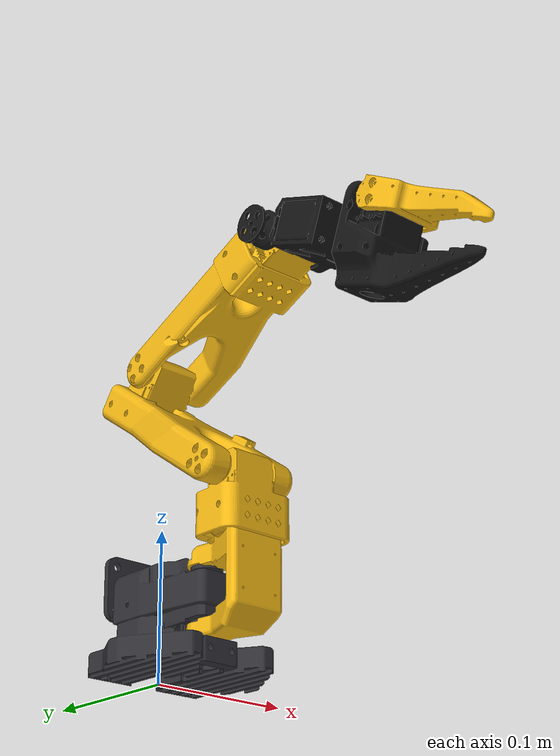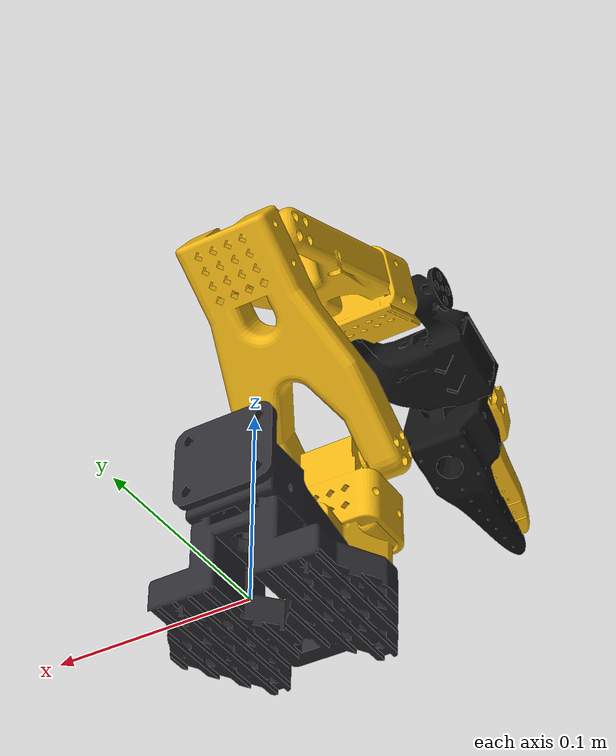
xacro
<?xml version="1.0"?>
<robot xmlns:xacro="http://www.ros.org/wiki/xacro" name="so101_project2_cad">
  <xacro:arg name="robot_namespace" default="/so101"/>
  <xacro:arg name="prefix" default="so101/"/>
  <xacro:arg name="controllers_file" default="$(find group4_assembly_line)/config/so101_controllers.yaml"/>
  <xacro:arg name="mesh_root" default="$(find group4_assembly_line)/models/project2_rig/meshes"/>
  <material name="yellow"><color rgba="0.95 0.72 0.08 1"/></material>
  <material name="black"><color rgba="0.08 0.08 0.08 1"/></material>
  <material name="dark"><color rgba="0.18 0.18 0.20 1"/></material>
  <link name="base_link">
    <inertial><origin xyz="0 -0.02305000089 0.04174822196"/><mass value="0.147"/><inertia ixx="0.0001980637170552798" ixy="0" ixz="0" iyy="0.00023613113453868756" iyz="0" izz="0.0002633892759556497"/></inertial>
    <visual><geometry><mesh filename="file://$(arg mesh_root)/Base.stl"/></geometry><material name="dark"/></visual>
    <collision><origin xyz="0 -0.02305000089 0.04174822196"/><geometry><box size="0.1109249964 0.09590000287 0.08349644393"/></geometry></collision>
  </link>
  <link name="shoulder_link">
    <inertial><origin xyz="-9.999983013e-05 0.05634999643 0.01939999964"/><mass value="0.13"/><inertia ixx="0.00018032222398818882" ixy="0" ixz="0" iyy="7.247066641987363e-05" iyz="0" izz="0.00016734302512824088"/></inertial>
    <visual><geometry><mesh filename="file://$(arg mesh_root)/Shoulder_Rotation_Pitch.stl"/></geometry><material name="yellow"/></visual>
    <collision><origin xyz="-9.999983013e-05 0.05634999643 0.01939999964"/><geometry><box size="0.05240000039 0.112699993 0.06279999949"/></geometry></collision>
  </link>
  <link name="upper_arm_link">
    <inertial><origin xyz="-9.999796748e-05 0.05912873289 0.01309999917"/><mass value="0.12"/><inertia ixx="0.00022707470914800528" ixy="0" ixz="0" iyy="7.420039895406964e-05" iyz="0" izz="0.0002508743110284007"/></inertial>
    <visual><geometry><mesh filename="file://$(arg mesh_root)/Upper_Arm.stl"/></geometry><material name="yellow"/></visual>
    <collision><origin xyz="-9.999796748e-05 0.05912873289 0.01309999917"/><geometry><box size="0.0700000003 0.1420824798 0.05019999854"/></geometry></collision>
  </link>
  <link name="lower_arm_link">
    <inertial><origin xyz="-0.004499998875 0.003449996468 0.0665499079"/><mass value="0.104"/><inertia ixx="0.00022569702070285007" ixy="0" ixz="0" iyy="0.00024635687927572" iyz="0" izz="4.426109820879402e-05"/></inertial>
    <visual><geometry><mesh filename="file://$(arg mesh_root)/Lower_Arm.stl"/></geometry><material name="yellow"/></visual>
    <collision><origin xyz="-0.004499998875 0.003449996468 0.0665499079"/><geometry><box size="0.06119999848 0.03689999972 0.1570998216"/></geometry></collision>
  </link>
  <link name="wrist_link">
    <inertial><origin xyz="-0.00356235262 -0.02530000173 9.313225746e-09"/><mass value="0.079"/><inertia ixx="4.337865344866657e-05" ixy="0" ixz="0" iyy="3.309944116124643e-05" iyz="0" izz="6.299542352328341e-05"/></inertial>
    <visual><geometry><mesh filename="file://$(arg mesh_root)/Wrist_Pitch_Roll.stl"/></geometry><material name="black"/></visual>
    <collision><origin xyz="-0.00356235262 -0.02530000173 9.313225746e-09"/><geometry><box size="0.06327529438 0.07460001484 0.03200000525"/></geometry></collision>
  </link>
  <link name="gripper_link">
    <inertial><origin xyz="0.002399999648 -0.05318749728 1.862645149e-09"/><mass value="0.087"/><inertia ixx="9.874240227025057e-05" ixy="0" ixz="0" iyy="4.790335541094816e-05" iyz="0" izz="0.00011323776747161855"/></inertial>
    <visual><geometry><mesh filename="file://$(arg mesh_root)/Fixed_Gripper.stl"/></geometry><material name="black"/></visual>
    <collision><geometry><mesh filename="file://$(arg mesh_root)/Fixed_Gripper.stl"/></geometry></collision>
  </link>
  <link name="moving_jaw_link">
    <inertial><origin xyz="-0.001150000375 -0.03602245869 9.999983013e-05"/><mass value="0.012"/><inertia ixx="1.0759738092386799e-05" ixy="0" ixz="0" iyy="2.8012899704715636e-06" iyz="0" izz="8.953027982749717e-06"/></inertial>
    <visual><geometry><mesh filename="file://$(arg mesh_root)/Moving_Jaw.stl"/></geometry><material name="yellow"/></visual>
    <collision><geometry><mesh filename="file://$(arg mesh_root)/Moving_Jaw.stl"/></geometry></collision>
  </link>
  <link name="world"/>
  <joint name="world_to_base" type="fixed"><parent link="world"/><child link="base_link"/><origin xyz="0 0 0" rpy="0 0 0"/></joint>
  <joint name="shoulder_pan" type="revolute">
    <parent link="base_link"/><child link="shoulder_link"/>
    <origin xyz="0 -0.04520000145 0.01649999991" rpy="1.570796327 0 0"/>
    <axis xyz="0 1 0"/>
    <limit effort="10" velocity="3.0" lower="-1.91986" upper="1.91986"/><dynamics damping="0.005" friction="0.0"/>
  </joint>
  <joint name="shoulder_lift" type="revolute">
    <parent link="shoulder_link"/><child link="upper_arm_link"/>
    <origin xyz="0 0.1024999991 0.0306000011" rpy="-0.9599310886 0 0"/>
    <axis xyz="1 0 0"/>
    <limit effort="10" velocity="3.0" lower="-1.29533" upper="2.19533"/><dynamics damping="0.005" friction="0.0"/>
  </joint>
  <joint name="elbow_flex" type="revolute">
    <parent link="upper_arm_link"/><child link="lower_arm_link"/>
    <origin xyz="0 0.1125699729 0.027999999" rpy="-0.5235987756 0 3.141592654"/>
    <axis xyz="-1 0 0"/>
    <limit effort="10" velocity="3.0" lower="-2.39" upper="0.99"/><dynamics damping="0.005" friction="0.0"/>
  </joint>
  <joint name="wrist_flex" type="revolute">
    <parent link="lower_arm_link"/><child link="wrist_link"/>
    <origin xyz="0 0.005199996289 0.13489981" rpy="-0.7853981634 0 3.141592654"/>
    <axis xyz="1 0 0"/>
    <limit effort="10" velocity="3.0" lower="-2.10806" upper="1.20806"/><dynamics damping="0.005" friction="0.0"/>
  </joint>
  <joint name="wrist_roll" type="revolute">
    <parent link="wrist_link"/><child link="gripper_link"/>
    <origin xyz="0 -0.06009999977 0" rpy="0 1.570796327 0"/>
    <axis xyz="0 -1 0"/>
    <limit effort="10" velocity="3.0" lower="-2.74385" upper="2.84121"/><dynamics damping="0.005" friction="0.0"/>
  </joint>
  <joint name="gripper" type="revolute">
    <parent link="gripper_link"/><child link="moving_jaw_link"/>
    <origin xyz="-0.02020000108 -0.02440000325 0" rpy="3.141592654 0 3.141592654"/>
    <axis xyz="0 0 1"/>
    <limit effort="10" velocity="3.0" lower="-0.874533" upper="1.04533"/><dynamics damping="0.005" friction="0.0"/>
  </joint>
  <link name="gripper_frame_link"/>
  <joint name="gripper_frame_joint" type="fixed"><parent link="gripper_link"/><child link="gripper_frame_link"/><origin xyz="0 -0.10 0" rpy="0 0 0"/></joint>
  <ros2_control name="SO101GazeboSystem" type="system"><hardware><plugin>gz_ros2_control/GazeboSimSystem</plugin></hardware>
    <joint name="shoulder_pan"><command_interface name="position"><param name="min">-1.91986</param><param name="max">1.91986</param></command_interface><state_interface name="position"><param name="initial_value">0.0</param></state_interface><state_interface name="velocity"/><state_interface name="effort"/></joint>
    <joint name="shoulder_lift"><command_interface name="position"><param name="min">-1.29533</param><param name="max">2.19533</param></command_interface><state_interface name="position"><param name="initial_value">0.0</param></state_interface><state_interface name="velocity"/><state_interface name="effort"/></joint>
    <joint name="elbow_flex"><command_interface name="position"><param name="min">-2.39</param><param name="max">0.99</param></command_interface><state_interface name="position"><param name="initial_value">0.0</param></state_interface><state_interface name="velocity"/><state_interface name="effort"/></joint>
    <joint name="wrist_flex"><command_interface name="position"><param name="min">-2.10806</param><param name="max">1.20806</param></command_interface><state_interface name="position"><param name="initial_value">0.0</param></state_interface><state_interface name="velocity"/><state_interface name="effort"/></joint>
    <joint name="wrist_roll"><command_interface name="position"><param name="min">-2.74385</param><param name="max">2.84121</param></command_interface><state_interface name="position"><param name="initial_value">0.0</param></state_interface><state_interface name="velocity"/><state_interface name="effort"/></joint>
    <joint name="gripper"><command_interface name="position"><param name="min">-0.874533</param><param name="max">1.04533</param></command_interface><state_interface name="position"><param name="initial_value">0.0</param></state_interface><state_interface name="velocity"/><state_interface name="effort"/></joint>
  </ros2_control>
  <gazebo><plugin filename="gz_ros2_control-system" name="gz_ros2_control::GazeboSimROS2ControlPlugin"><robot_param>robot_description</robot_param><robot_param_node>robot_state_publisher</robot_param_node><parameters>$(arg controllers_file)</parameters><controller_manager_name>controller_manager</controller_manager_name><ros><namespace>$(arg robot_namespace)</namespace></ros></plugin></gazebo>
</robot>
